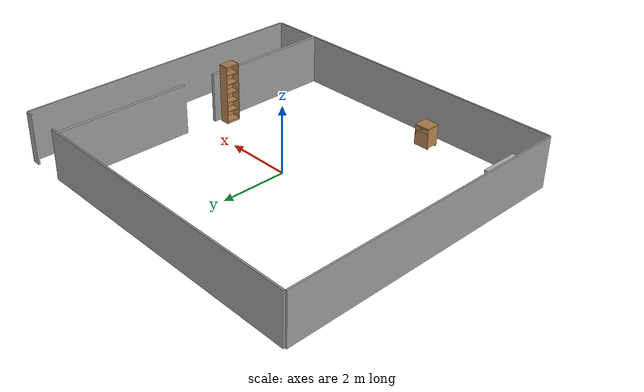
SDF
<sdf version="1.4">
 <world name="default">
  <model name="rnd_room_c3_a">
   <link name="link_0">
    <inertial>
     <mass>1</mass>
     <inertia>
      <ixx>0.166667</ixx>
      <ixy>0</ixy>
      <ixz>0</ixz>
      <iyy>0.166667</iyy>
      <iyz>0</iyz>
      <izz>0.166667</izz>
     </inertia>
    </inertial>
    <visual name="visual">
     <geometry><mesh><uri>model://RandomRooms/rnd_room_c2_01.dae</uri><scale>1 1 1</scale></mesh></geometry>
     <material>
      <lighting>1</lighting>
      <script><uri>model://RandomRooms/rnd_room_c2_01.dae</uri><name>Gazebo/Grey</name></script>
      <shader type="pixel"><normal_map>__default__</normal_map></shader>
     </material>
    </visual>
    <collision name="collision">
     <geometry><mesh><uri>model://RandomRooms/rnd_room_c2_01.dae</uri><scale>1 1 1</scale></mesh></geometry>
     <surface>
      <friction>
       <ode><mu>1</mu><mu2>1</mu2><fdir1>0 0 0</fdir1><slip1>0</slip1><slip2>0</slip2></ode>
       <torsional>
        <coefficient>1</coefficient>
        <patch_radius>0</patch_radius>
        <surface_radius>0</surface_radius>
        <use_patch_radius>1</use_patch_radius>
        <ode><slip>0</slip></ode>
       </torsional>
      </friction>
      <bounce><restitution_coefficient>0</restitution_coefficient><threshold>1e+06</threshold></bounce>
      <contact>
       <collide_without_contact>0</collide_without_contact>
       <collide_without_contact_bitmask>1</collide_without_contact_bitmask>
       <collide_bitmask>1</collide_bitmask>
       <ode>
        <soft_cfm>0</soft_cfm>
        <soft_erp>0.2</soft_erp>
        <kp>1e+13</kp>
        <kd>1</kd>
        <max_vel>0.01</max_vel>
        <min_depth>0</min_depth>
       </ode>
       <bullet>
        <split_impulse>1</split_impulse>
        <split_impulse_penetration_threshold>-0.01</split_impulse_penetration_threshold>
        <soft_cfm>0</soft_cfm>
        <soft_erp>0.2</soft_erp>
        <kp>1e+13</kp>
        <kd>1</kd>
       </bullet>
      </contact>
     </surface>
    </collision>
   </link>
   <static>1</static>
  </model>
  <model name="Desk_03_1">
   <link name="link_0">
    <inertial>
     <mass>25</mass>
     <inertia>
      <ixx>0.166667</ixx>
      <ixy>0</ixy>
      <ixz>0</ixz>
      <iyy>0.166667</iyy>
      <iyz>0</iyz>
      <izz>0.166667</izz>
     </inertia>
    </inertial>
    <visual name="visual">
     <geometry><mesh><uri>model://BioRoboticsLab/meshes/Desk_03.dae</uri><scale>1 1 1</scale></mesh></geometry>
     <material><lighting>1</lighting><shader type="pixel"/></material>
    </visual>
    <collision name="collision">
     <geometry><mesh><uri>model://BioRoboticsLab/meshes/Desk_03.dae</uri><scale>1 1 1</scale></mesh></geometry>
     <surface>
      <friction>
       <ode><mu>1</mu><mu2>1</mu2><fdir1>0 0 0</fdir1><slip1>0</slip1><slip2>0</slip2></ode>
       <torsional>
        <coefficient>1</coefficient>
        <patch_radius>0</patch_radius>
        <surface_radius>0</surface_radius>
        <use_patch_radius>1</use_patch_radius>
        <ode><slip>0</slip></ode>
       </torsional>
      </friction>
      <bounce><restitution_coefficient>0</restitution_coefficient><threshold>1e+06</threshold></bounce>
      <contact>
       <collide_without_contact>0</collide_without_contact>
       <collide_without_contact_bitmask>1</collide_without_contact_bitmask>
       <collide_bitmask>1</collide_bitmask>
       <ode>
        <soft_cfm>0</soft_cfm>
        <soft_erp>0.2</soft_erp>
        <kp>1e+13</kp>
        <kd>1</kd>
        <max_vel>0.01</max_vel>
        <min_depth>0</min_depth>
       </ode>
       <bullet>
        <split_impulse>1</split_impulse>
        <split_impulse_penetration_threshold>-0.01</split_impulse_penetration_threshold>
        <soft_cfm>0</soft_cfm>
        <soft_erp>0.2</soft_erp>
        <kp>1e+13</kp>
        <kd>1</kd>
       </bullet>
      </contact>
     </surface>
    </collision>
   </link>
   <static>1</static>
   <pose>-4.58457 -3.61993 0 0 -0 -1.57549</pose>
  </model>
  <model name="high_shelf_1">
   <link name="link">
    <inertial>
     <mass>5</mass>
     <inertia><ixx>1</ixx><ixy>0</ixy><ixz>0</ixz><iyy>1</iyy><iyz>0</iyz><izz>1</izz></inertia>
    </inertial>
    <visual name="left_board">
     <pose>-0.1475 0.009 0.898 0 -0 0</pose>
     <geometry><box><size>0.295 0.018 1.796</size></box></geometry>
     <material>
      <script>
       <uri>model://base_materials/wood/scripts</uri>
       <uri>model://base_materials/wood/textures</uri>
       <name>base_materials/light_wood</name>
      </script>
     </material>
    </visual>
    <collision name="collision_left_board">
     <pose>-0.1475 0.009 0.898 0 -0 0</pose>
     <geometry><box><size>0.295 0.018 1.796</size></box></geometry>
    </collision>
    <visual name="right_board">
     <pose>-0.1475 0.441 0.898 0 -0 0</pose>
     <geometry><box><size>0.295 0.018 1.796</size></box></geometry>
     <material>
      <script>
       <uri>model://base_materials/wood/scripts</uri>
       <uri>model://base_materials/wood/textures</uri>
       <name>base_materials/light_wood</name>
      </script>
     </material>
    </visual>
    <collision name="collision_right_board">
     <pose>-0.1475 0.441 0.898 0 -0 0</pose>
     <geometry><box><size>0.295 0.018 1.796</size></box></geometry>
    </collision>
    <visual name="top_board">
     <pose>-0.1475 0.225 1.7825 0 -0 0</pose>
     <geometry><box><size>0.295 0.414 0.035</size></box></geometry>
     <material>
      <script>
       <uri>model://base_materials/wood/scripts</uri>
       <uri>model://base_materials/wood/textures</uri>
       <name>base_materials/light_wood</name>
      </script>
     </material>
    </visual>
    <collision name="collision_top_board">
     <pose>-0.1475 0.225 1.7825 0 -0 0</pose>
     <geometry><box><size>0.295 0.414 0.035</size></box></geometry>
    </collision>
    <visual name="1st_shelf">
     <pose>-0.162 0.225 1.51 0 -0 0</pose>
     <geometry><box><size>0.266 0.414 0.018</size></box></geometry>
     <material>
      <script>
       <uri>model://base_materials/wood/scripts</uri>
       <uri>model://base_materials/wood/textures</uri>
       <name>base_materials/light_wood</name>
      </script>
     </material>
    </visual>
    <collision name="collision_1st_shelf">
     <pose>-0.162 0.225 1.51 0 -0 0</pose>
     <geometry><box><size>0.266 0.414 0.018</size></box></geometry>
    </collision>
    <visual name="2nd_shelf">
     <pose>-0.162 0.225 1.22 0 -0 0</pose>
     <geometry><box><size>0.266 0.414 0.018</size></box></geometry>
     <material>
      <script>
       <uri>model://base_materials/wood/scripts</uri>
       <uri>model://base_materials/wood/textures</uri>
       <name>base_materials/light_wood</name>
      </script>
     </material>
    </visual>
    <collision name="collision_2nd_shelf">
     <pose>-0.162 0.225 1.22 0 -0 0</pose>
     <geometry><box><size>0.266 0.414 0.018</size></box></geometry>
    </collision>
    <visual name="3rd_shelf">
     <pose>-0.162 0.225 0.93 0 -0 0</pose>
     <geometry><box><size>0.266 0.414 0.018</size></box></geometry>
     <material>
      <script>
       <uri>model://base_materials/wood/scripts</uri>
       <uri>model://base_materials/wood/textures</uri>
       <name>base_materials/light_wood</name>
      </script>
     </material>
    </visual>
    <collision name="collision_3rd_shelf">
     <pose>-0.162 0.225 0.93 0 -0 0</pose>
     <geometry><box><size>0.266 0.414 0.018</size></box></geometry>
    </collision>
    <visual name="4th_shelf">
     <pose>-0.162 0.225 0.65 0 -0 0</pose>
     <geometry><box><size>0.266 0.414 0.018</size></box></geometry>
     <material>
      <script>
       <uri>model://base_materials/wood/scripts</uri>
       <uri>model://base_materials/wood/textures</uri>
       <name>base_materials/light_wood</name>
      </script>
     </material>
    </visual>
    <collision name="collision_4th_shelf">
     <pose>-0.162 0.225 0.65 0 -0 0</pose>
     <geometry><box><size>0.266 0.414 0.018</size></box></geometry>
    </collision>
    <visual name="5th_shelf">
     <pose>-0.162 0.225 0.36 0 -0 0</pose>
     <geometry><box><size>0.266 0.414 0.018</size></box></geometry>
     <material>
      <script>
       <uri>model://base_materials/wood/scripts</uri>
       <uri>model://base_materials/wood/textures</uri>
       <name>base_materials/light_wood</name>
      </script>
     </material>
    </visual>
    <collision name="collision_5th_shelf">
     <pose>-0.162 0.225 0.36 0 -0 0</pose>
     <geometry><box><size>0.266 0.414 0.018</size></box></geometry>
    </collision>
    <visual name="bottom_board">
     <pose>-0.1475 0.225 0.035 0 -0 0</pose>
     <geometry><box><size>0.295 0.414 0.07</size></box></geometry>
     <material>
      <script>
       <uri>model://base_materials/wood/scripts</uri>
       <uri>model://base_materials/wood/textures</uri>
       <name>base_materials/light_wood</name>
      </script>
     </material>
    </visual>
    <collision name="collision_bottom_board">
     <pose>-0.1475 0.225 0.035 0 -0 0</pose>
     <geometry><box><size>0.295 0.414 0.07</size></box></geometry>
    </collision>
    <visual name="back_board">
     <pose>-0.286 0.225 0.898 0 -0 0</pose>
     <geometry><box><size>0.018 0.414 1.796</size></box></geometry>
     <material>
      <script>
       <uri>model://base_materials/wood/scripts</uri>
       <uri>model://base_materials/wood/textures</uri>
       <name>base_materials/light_wood</name>
      </script>
     </material>
    </visual>
    <collision name="collision_back_board">
     <pose>-0.286 0.225 0.898 0 -0 0</pose>
     <geometry><box><size>0.018 0.414 1.796</size></box></geometry>
    </collision>
    <velocity_decay><linear>0</linear><angular>0</angular></velocity_decay>
   </link>
   <static>1</static>
   <pose>3.08485 -0.670878 0 0 0 -3.13832</pose>
  </model>
  <model name="wagon_1">
   <link name="link">
    <inertial>
     <mass>10</mass>
     <inertia><ixx>1</ixx><ixy>0</ixy><ixz>0</ixz><iyy>1</iyy><iyz>0</iyz><izz>1</izz></inertia>
    </inertial>
    <visual name="left_board">
     <pose>-0.2325 0.01 0.345 0 -0 0</pose>
     <geometry><box><size>0.415 0.02 0.59</size></box></geometry>
     <material>
      <script><uri>model://base_materials/wood/scripts/wood.material</uri><name>base_materials/wood</name></script>
     </material>
    </visual>
    <collision name="collision_left_board">
     <pose>-0.2325 0.01 0.345 0 -0 0</pose>
     <geometry><box><size>0.415 0.02 0.59</size></box></geometry>
    </collision>
    <visual name="right_board">
     <pose>-0.2325 0.4325 0.345 0 -0 0</pose>
     <geometry><box><size>0.415 0.02 0.59</size></box></geometry>
     <material>
      <script><uri>model://base_materials/wood/scripts/wood.material</uri><name>base_materials/wood</name></script>
     </material>
    </visual>
    <collision name="collision_right_board">
     <pose>-0.2325 0.4325 0.345 0 -0 0</pose>
     <geometry><box><size>0.415 0.02 0.59</size></box></geometry>
    </collision>
    <visual name="top_board">
     <pose>-0.22 0.2225 0.655 0 -0 0</pose>
     <geometry><box><size>0.44 0.445 0.03</size></box></geometry>
     <material>
      <script><uri>model://base_materials/wood/scripts/wood.material</uri><name>base_materials/wood</name></script>
     </material>
    </visual>
    <collision name="collision_top_board">
     <pose>-0.22 0.2225 0.655 0 -0 0</pose>
     <geometry><box><size>0.44 0.445 0.03</size></box></geometry>
    </collision>
    <visual name="back_board">
     <pose>-0.425 0.2225 0.345 0 -0 0</pose>
     <geometry><box><size>0.02 0.405 0.59</size></box></geometry>
     <material>
      <script><uri>model://base_materials/wood/scripts/wood.material</uri><name>base_materials/wood</name></script>
     </material>
    </visual>
    <collision name="collision_back_board">
     <pose>-0.425 0.2225 0.345 0 -0 0</pose>
     <geometry><box><size>0.02 0.405 0.59</size></box></geometry>
    </collision>
    <visual name="bottom_board">
     <pose>-0.2325 0.2225 0.06 0 -0 0</pose>
     <geometry><box><size>0.415 0.405 0.02</size></box></geometry>
     <material>
      <script><uri>model://base_materials/wood/scripts/wood.material</uri><name>base_materials/wood</name></script>
     </material>
    </visual>
    <collision name="collision_bottom_board">
     <pose>-0.2325 0.2225 0.06 0 -0 0</pose>
     <geometry><box><size>0.415 0.405 0.02</size></box></geometry>
    </collision>
    <visual name="1st_drawer">
     <pose>-0.0125 0.2225 0.57 0 -0 0</pose>
     <geometry><box><size>0.025 0.445 0.14</size></box></geometry>
     <material>
      <script><uri>model://base_materials/wood/scripts/wood.material</uri><name>base_materials/wood</name></script>
     </material>
    </visual>
    <collision name="collision_1st_drawer">
     <pose>-0.0125 0.2225 0.57 0 -0 0</pose>
     <geometry><box><size>0.025 0.445 0.14</size></box></geometry>
    </collision>
    <visual name="1st_drawer_handle_l1">
     <pose>0.0115 0.1895 0.6 3.14159 1.57079 3.14159</pose>
     <geometry><cylinder><radius>0.007</radius><length>0.023</length></cylinder></geometry>
     <material>
      <ambient>0.18431 0.3098 0.3098 1</ambient>
      <diffuse>0.18431 0.3098 0.3098 1</diffuse>
      <specular>0.1 0.1 0.1 1</specular>
     </material>
    </visual>
    <collision name="collision_1st_drawer_handle_l1">
     <pose>0.0115 0.1895 0.6 3.14159 1.57079 3.14159</pose>
     <geometry><cylinder><radius>0.007</radius><length>0.023</length></cylinder></geometry>
    </collision>
    <visual name="1st_drawer_handle_l2">
     <pose>0.023 0.1895 0.6 0 -0 0</pose>
     <geometry><sphere><radius>0.007</radius></sphere></geometry>
     <material>
      <ambient>0.18431 0.3098 0.3098 1</ambient>
      <diffuse>0.18431 0.3098 0.3098 1</diffuse>
      <specular>0.1 0.1 0.1 1</specular>
     </material>
    </visual>
    <collision name="collision_1st_drawer_handle_l2">
     <pose>0.023 0.1895 0.6 0 -0 0</pose>
     <geometry><sphere><radius>0.007</radius></sphere></geometry>
    </collision>
    <visual name="1st_drawer_handle_r1">
     <pose>0.0115 0.2555 0.6 3.14159 1.57079 3.14159</pose>
     <geometry><cylinder><radius>0.007</radius><length>0.023</length></cylinder></geometry>
     <material>
      <ambient>0.18431 0.3098 0.3098 1</ambient>
      <diffuse>0.18431 0.3098 0.3098 1</diffuse>
      <specular>0.1 0.1 0.1 1</specular>
     </material>
    </visual>
    <collision name="collision_1st_drawer_handle_r1">
     <pose>0.0115 0.2555 0.6 3.14159 1.57079 3.14159</pose>
     <geometry><cylinder><radius>0.007</radius><length>0.023</length></cylinder></geometry>
    </collision>
    <visual name="1st_drawer_handle_r2">
     <pose>0.023 0.2555 0.6 0 -0 0</pose>
     <geometry><sphere><radius>0.007</radius></sphere></geometry>
     <material>
      <ambient>0.18431 0.3098 0.3098 1</ambient>
      <diffuse>0.18431 0.3098 0.3098 1</diffuse>
      <specular>0.1 0.1 0.1 1</specular>
     </material>
    </visual>
    <collision name="collision_1st_drawer_handle_r2">
     <pose>0.023 0.2555 0.6 0 -0 0</pose>
     <geometry><sphere><radius>0.007</radius></sphere></geometry>
    </collision>
    <visual name="1st_drawer_handle_center">
     <pose>0.023 0.2225 0.6 1.5708 -0 0</pose>
     <geometry><cylinder><radius>0.007</radius><length>0.066</length></cylinder></geometry>
     <material>
      <ambient>0.18431 0.3098 0.3098 1</ambient>
      <diffuse>0.18431 0.3098 0.3098 1</diffuse>
      <specular>0.1 0.1 0.1 1</specular>
     </material>
    </visual>
    <collision name="collision_1st_drawer_handle_center">
     <pose>0.023 0.2225 0.6 1.5708 -0 0</pose>
     <geometry><cylinder><radius>0.007</radius><length>0.066</length></cylinder></geometry>
    </collision>
    <visual name="2nd_drawer">
     <pose>-0.0125 0.2225 0.275 0 -0 0</pose>
     <geometry><box><size>0.025 0.445 0.45</size></box></geometry>
     <material>
      <script><uri>model://base_materials/wood/scripts/wood.material</uri><name>base_materials/wood</name></script>
     </material>
    </visual>
    <collision name="collision_2nd_drawer">
     <pose>-0.0125 0.2225 0.275 0 -0 0</pose>
     <geometry><box><size>0.025 0.445 0.45</size></box></geometry>
    </collision>
    <visual name="2nd_drawer_handle_top1">
     <pose>0.0115 0.04 0.47 3.14159 1.57079 3.14159</pose>
     <geometry><cylinder><radius>0.007</radius><length>0.023</length></cylinder></geometry>
     <material>
      <ambient>0.18431 0.3098 0.3098 1</ambient>
      <diffuse>0.18431 0.3098 0.3098 1</diffuse>
      <specular>0.1 0.1 0.1 1</specular>
     </material>
    </visual>
    <collision name="collision_2nd_drawer_handle_top1">
     <pose>0.0115 0.04 0.47 3.14159 1.57079 3.14159</pose>
     <geometry><cylinder><radius>0.007</radius><length>0.023</length></cylinder></geometry>
    </collision>
    <visual name="2nd_drawer_handle_top2">
     <pose>0.023 0.04 0.47 0 -0 0</pose>
     <geometry><sphere><radius>0.007</radius></sphere></geometry>
     <material>
      <ambient>0.18431 0.3098 0.3098 1</ambient>
      <diffuse>0.18431 0.3098 0.3098 1</diffuse>
      <specular>0.1 0.1 0.1 1</specular>
     </material>
    </visual>
    <collision name="2nd_drawer_handle_top2">
     <pose>0.023 0.04 0.47 0 -0 0</pose>
     <geometry><sphere><radius>0.007</radius></sphere></geometry>
    </collision>
    <visual name="2nd_drawer_handle_bottom1">
     <pose>0.0115 0.04 0.404 3.14159 1.57079 3.14159</pose>
     <geometry><cylinder><radius>0.007</radius><length>0.023</length></cylinder></geometry>
     <material>
      <ambient>0.18431 0.3098 0.3098 1</ambient>
      <diffuse>0.18431 0.3098 0.3098 1</diffuse>
      <specular>0.1 0.1 0.1 1</specular>
     </material>
    </visual>
    <collision name="collision_2nd_drawer_handle_bottom1">
     <pose>0.0115 0.04 0.404 3.14159 1.57079 3.14159</pose>
     <geometry><cylinder><radius>0.007</radius><length>0.023</length></cylinder></geometry>
    </collision>
    <visual name="2nd_drawer_handle_bottom2">
     <pose>0.023 0.04 0.404 0 -0 0</pose>
     <geometry><sphere><radius>0.007</radius></sphere></geometry>
     <material>
      <ambient>0.18431 0.3098 0.3098 1</ambient>
      <diffuse>0.18431 0.3098 0.3098 1</diffuse>
      <specular>0.1 0.1 0.1 1</specular>
     </material>
    </visual>
    <collision name="2nd_drawer_handle_bottom2">
     <pose>0.023 0.04 0.404 0 -0 0</pose>
     <geometry><sphere><radius>0.007</radius></sphere></geometry>
    </collision>
    <visual name="2nd_drawer_handle_center">
     <pose>0.023 0.04 0.437 0 -0 0</pose>
     <geometry><cylinder><radius>0.007</radius><length>0.066</length></cylinder></geometry>
     <material>
      <ambient>0.18431 0.3098 0.3098 1</ambient>
      <diffuse>0.18431 0.3098 0.3098 1</diffuse>
      <specular>0.1 0.1 0.1 1</specular>
     </material>
    </visual>
    <collision name="collision_2nd_drawer_handle_center">
     <pose>0.023 0.04 0.437 0 -0 0</pose>
     <geometry><cylinder><radius>0.007</radius><length>0.066</length></cylinder></geometry>
    </collision>
    <visual name="left_front_caster">
     <pose>-0.07 0.025 0.025 3.14159 1.57079 3.14159</pose>
     <geometry><cylinder><radius>0.025</radius><length>0.035</length></cylinder></geometry>
     <material><script><name>Gazebo/Black</name><uri>__default__</uri></script></material>
    </visual>
    <collision name="collision_left_front_caster">
     <pose>-0.07 0.025 0.025 3.14159 1.57079 3.14159</pose>
     <geometry><cylinder><radius>0.025</radius><length>0.035</length></cylinder></geometry>
    </collision>
    <visual name="right_front_caster">
     <pose>-0.07 0.42 0.025 3.14159 1.57079 3.14159</pose>
     <geometry><cylinder><radius>0.025</radius><length>0.035</length></cylinder></geometry>
     <material><script><name>Gazebo/Black</name><uri>__default__</uri></script></material>
    </visual>
    <collision name="collision_right_front_caster">
     <pose>-0.07 0.42 0.025 3.14159 1.57079 3.14159</pose>
     <geometry><cylinder><radius>0.025</radius><length>0.035</length></cylinder></geometry>
    </collision>
    <visual name="left_back_caster">
     <pose>-0.39 0.025 0.025 3.14159 1.57079 3.14159</pose>
     <geometry><cylinder><radius>0.025</radius><length>0.035</length></cylinder></geometry>
     <material><script><name>Gazebo/Black</name><uri>__default__</uri></script></material>
    </visual>
    <collision name="collision_left_back_caster">
     <pose>-0.39 0.025 0.025 3.14159 1.57079 3.14159</pose>
     <geometry><cylinder><radius>0.025</radius><length>0.035</length></cylinder></geometry>
    </collision>
    <visual name="right_back_caster">
     <pose>-0.39 0.42 0.025 3.14159 1.57079 3.14159</pose>
     <geometry><cylinder><radius>0.025</radius><length>0.035</length></cylinder></geometry>
     <material><script><name>Gazebo/Black</name><uri>__default__</uri></script></material>
    </visual>
    <collision name="collision_right_back_caster">
     <pose>-0.39 0.42 0.025 3.14159 1.57079 3.14159</pose>
     <geometry><cylinder><radius>0.025</radius><length>0.035</length></cylinder></geometry>
    </collision>
    <velocity_decay><linear>0</linear><angular>0</angular></velocity_decay>
   </link>
   <static>1</static>
   <pose>-1.36316 -3.72253 0 0 -0 1.58</pose>
  </model>
 </world>
</sdf>
